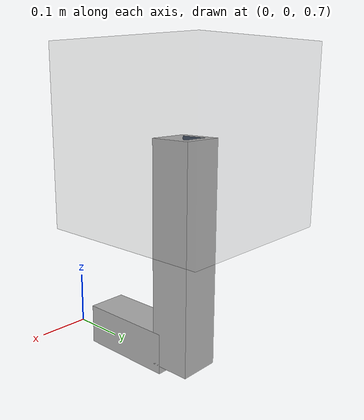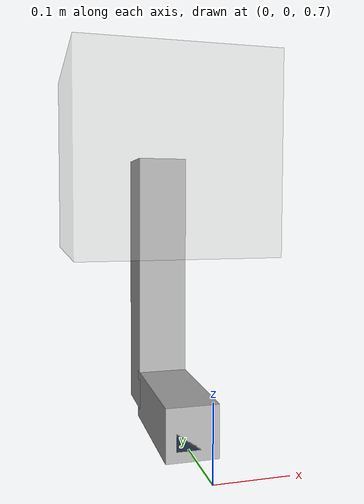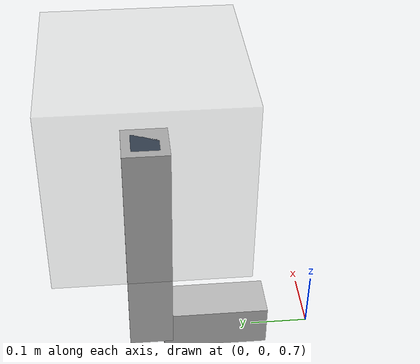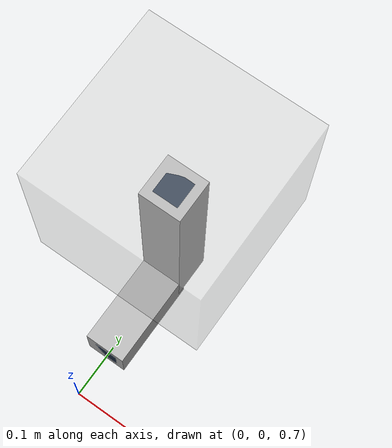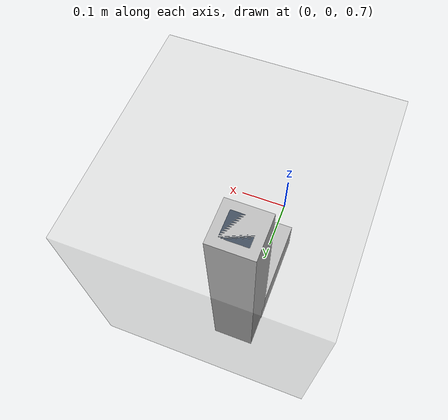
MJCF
<mujoco model="camera_with_mount">
  <compiler angle="radian"/>
  <option/>

  <worldbody>

    <!-- ===== FRONT MOUNT (already w.r.t. world) ===== -->
    <!-- camera_mount_front_horizontal_joint: xyz="0 0.17 0.73", rpy="-90 0 0" -->
    <body name="camera_mount_front_horizontal" pos="0 0.17 0.73" euler="-1.57079632679 0 0">
      <geom name="cmfh_visual"    type="box" size="0.0225 0.0225 0.090" rgba="0.1 0.16 0.24 1"/>
      <geom name="cmfh_collision" type="box" size="0.0375 0.0375 0.090" rgba="0.7 0.7 0.7 1" contype="1" conaffinity="1"/>

      <!-- camera_mount_front_vertical_joint: xyz="0 -0.1775 0.1125", rpy="+90 +90 0" -->
      <body name="camera_mount_front_vertical" pos="0 -0.1775 0.1125" euler="1.57079632679 0 0">
        <geom name="cmfv_visual"    type="box" size="0.0225 0.0225 0.200" rgba="0.1 0.16 0.24 1"/>
        <geom name="cmfv_collision" type="box" size="0.0375 0.0375 0.200" rgba="0.7 0.7 0.7 1" contype="1" conaffinity="1"/>

        <!-- front_print_joint: xyz="0 0 0.2", rpy="+90 0 180" -->
        <body name="front_print" pos="0 0 0.2" euler="1.57079632679 0 3.14159265359">
          <geom name="front_print_collision" type="box" size="0.150 0.150 0.150" rgba="0.7 0.7 0.7 0.25" contype="1" conaffinity="1"/>
          <geom name="front_print_visual"    type="box" size="0.150 0.150 0.150" rgba="0.7 0.7 0.7 0.25"/>
        </body>
      </body>
    </body>

  </worldbody>
</mujoco>
